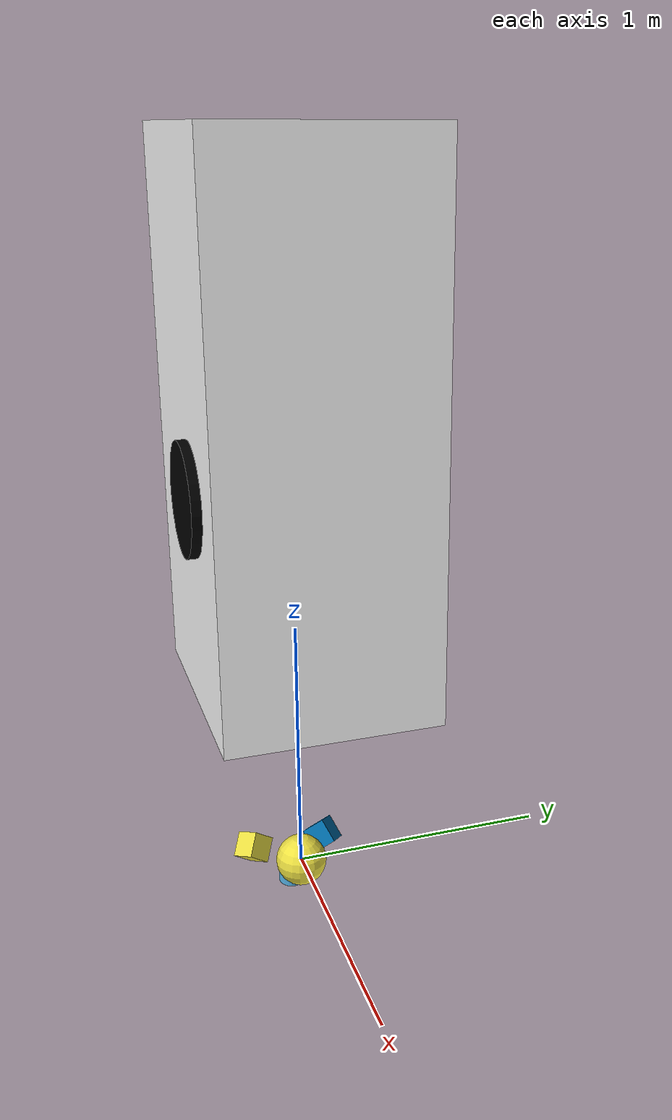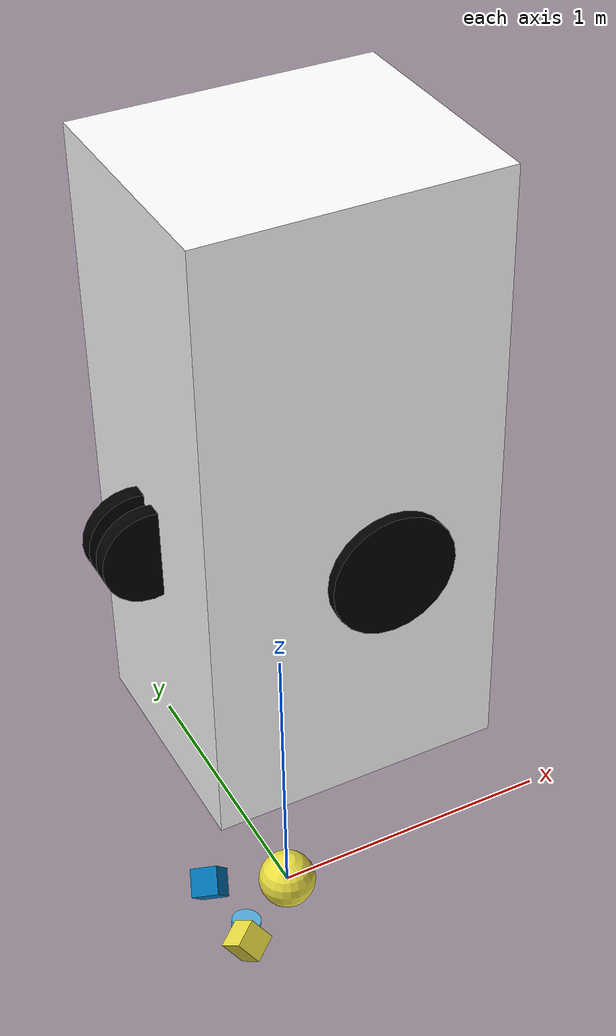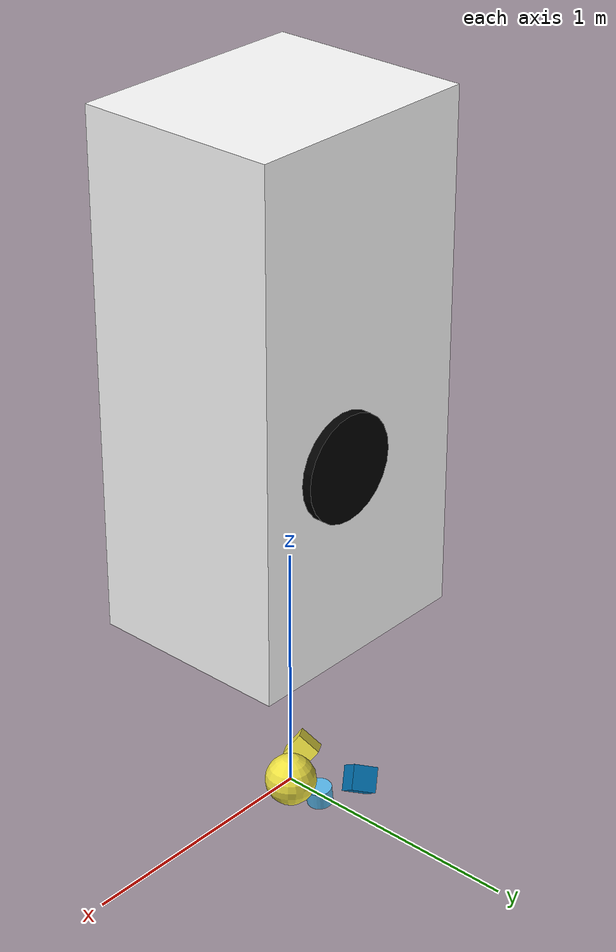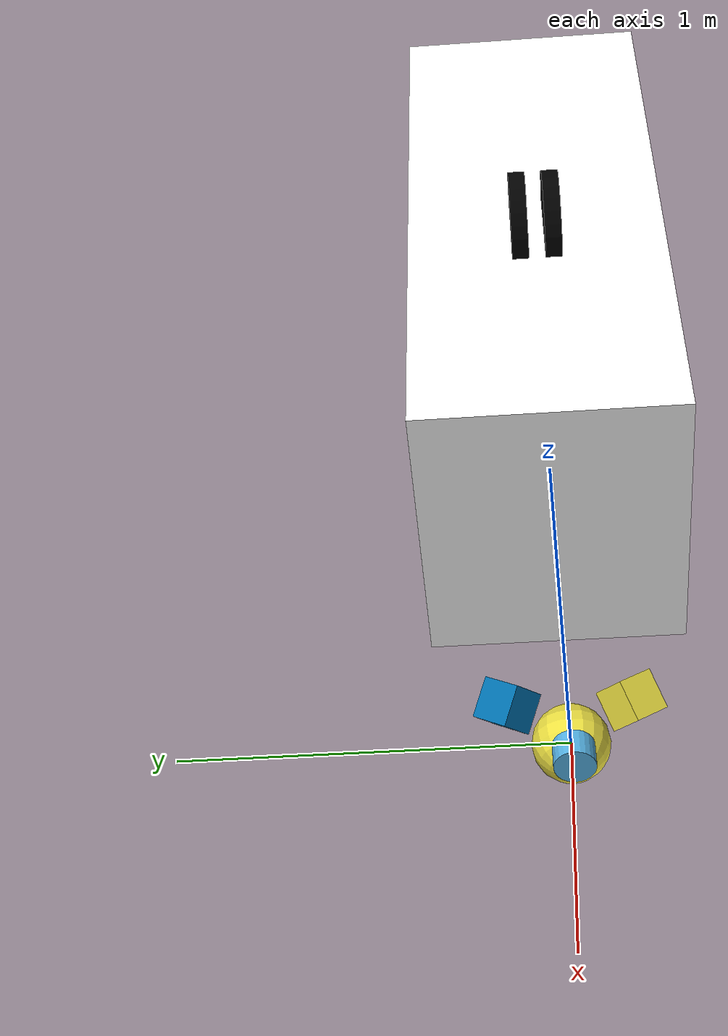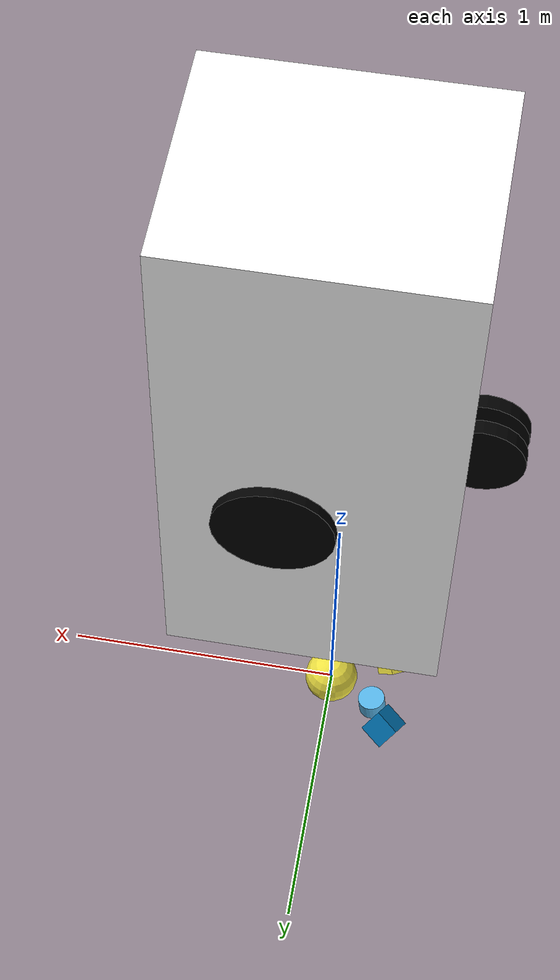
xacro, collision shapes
<?xml version="1.0"?>
<robot xmlns:xacro="http://www.ros.org/wiki/xacro" name="navvis_m6">
   <xacro:include filename="$(find Lab_5)/models/navvis.xacro" />
   <link name="base_link">
   </link>
   <joint name="base_link_base_joint" type="fixed">
	<parent link="base_link" />
	<child link="base" />
	<origin xyz="0.07 0 1.792" rpy="0.0 ${pi} 0.0" />
   </joint>
   <joint name="base_imu_joint" type="fixed">
	<parent link="base_link" />
	<child link="imu" />
	<origin xyz="0.0 0.0 0.0" rpy="3.1405788 0.0034281 3.1382064" />
   </joint>
   <link name="imu">
	<visual>
		<geometry>
			<sphere radius="0.1" />
		</geometry>
	</visual>
	<collision>
		<geometry>
			<sphere radius="0.1" />
		</geometry>
	</collision>
   </link>
</robot>

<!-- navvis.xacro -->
<robot xmlns:xacro="https://www.ros.org/wiki/xacro" name="Navvis" >
	<xacro:include filename="$(find gazebo_plugins)/test/multi_robot_scenario/xacro/laser/hokuyo.xacro" />
	<xacro:include filename="$(find velodyne_description)/urdf/VLP-16.urdf.xacro" />
	<material name="white">
		<color rgba="1 1 1 1"/>
	</material>

	<material name="black">
		<color rgba="0 0 0 1"/>
	</material>

	<xacro:macro name="laser_vert" params="description xyz rpy">
		<link name="laser_vert_${description}">
			<visual>
				<geometry>
					<box size=".062 .062 .087"/>
				</geometry>
				<material name="black"/>
			</visual>
			<collision>
				<geometry>
					<box size=".062 .062 .087"/>
				</geometry>
			</collision>
		</link>
		<joint name="base2laser_vert_${description}" type="fixed">
			<parent link="base" />
			<child link="laser_vert_${description}"/>
			<origin xyz="${xyz}" rpy="${rpy}"/>
		</joint>
	</xacro:macro>
	<xacro:macro name="wheel" params="description xyz radius">
		<link name="wheel_${description}">
			<visual>
				<geometry>
					<cylinder radius="${radius}" length=".05"/>
				</geometry>
				<material name="black"/>
			</visual>
			<collision>
				<geometry>
					<cylinder radius="${radius}" length=".05"/>
				</geometry>
			</collision>
		</link>
		<joint name="base2wheel_${description}" type="continuous">
			<parent link="base" />
			<child link="wheel_${description}"/>
			<origin xyz="${xyz}" rpy="-1.5707 0.0 0.0"/>
			<axis xyz="0 1 0"/>
			<limit effort=".1" velocity="99"/>
		</joint>
	</xacro:macro>
	<xacro:macro name="base">
		<origin xyz=".2 0 .99"/>
		<geometry>
			<box size="0.2 0.3 1.80"/>
		</geometry>
	</xacro:macro>

	<xacro:macro name="laser_horiz">
		<geometry>
			<cylinder radius="0.052" length="0.072"/>
		</geometry>
	</xacro:macro>
	<link name="base">
			<visual>
				<material name="white"/>
				<xacro:base/>
			</visual>
			<collision>
				<geometry>
					<box size="0.94 0.78 1.98"/>
				</geometry>
			</collision>
	</link>
	<VLP-16 parent="base" name="laser_horiz" topic="laser_horiz/packets" hz="10" samples="440" gpu="false">
		<origin xyz="0.2325416305773505 -0.0001380069427607134 1.920122926231907"
rpy="-0.0012068 0.114646 -0.0015308" />
	</VLP-16>
	<xacro:laser name="laser_vert_top_right" parent="base" xyz="0.2978 -0.1450 1.8451" rpy="-1.176 0.6313 -1.9377" meshes="package://gazebo_plugins/test/multi_robot_scenario/meshes/laser" />
	<xacro:laser name="laser_vert_top_left" parent="base" xyz="0.2997 0.1531 1.8443" rpy="1.178 0.6198 1.9560" meshes="package://gazebo_plugins/test/multi_robot_scenario/meshes/laser" />
	<xacro:laser name="laser_vert_bottom" parent="base" xyz="0.3158 -0.0021 .51" rpy="3.1355 -1.3045 0.0025" meshes="package://gazebo_plugins/test/multi_robot_scenario/meshes/laser" />

	<xacro:wheel description="right" xyz="-0.1 -0.4 .2" radius=".2"/>
	<xacro:wheel description="left" xyz="-0.1 0.4 .2" radius=".2"/>
	<xacro:wheel description="front_right" xyz="0.5 -0.05 .15" radius=".15"/>
	<xacro:wheel description="front_left" xyz="0.5 0.05 .15" radius=".15"/>
</robot>

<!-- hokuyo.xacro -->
<robot xmlns:xacro="http://www.ros.org/wiki/xacro">

<!-- Front Laser -->
<xacro:macro name="laser" params="name parent xyz rpy meshes" >

  <joint name="${parent}_${name}_joint" type="fixed">
      <axis xyz="0 0 1" />
      <origin xyz="${xyz}" rpy="${rpy}"/>
      <parent link="${parent}"/>
      <child link="${name}"/>
    </joint>

    <link name="${name}">
      <collision>
        <origin xyz="0 0 0" rpy="0 0 0"/>
        <geometry>
          <box size="0.1 0.1 0.1"/>
        </geometry>
      </collision>
      <visual>
        <origin xyz="0 0 0" rpy="0 0 0"/>
        <geometry>
          <mesh filename="${meshes}/hokuyo.dae"/>
        </geometry>
      </visual>
      <inertial>
        <mass value="1e-5" />
        <origin xyz="0 0 0" rpy="0 0 0"/>
        <inertia ixx="1e-6" ixy="0" ixz="0" iyy="1e-6" iyz="0" izz="1e-6" />
      </inertial>
    </link>

    <gazebo reference="${name}">
        <sensor name="laser" type="ray">
        <pose>0 0 0 0 0 0</pose>
          <ray>
            <scan>
              <horizontal>
                <!-- The URG-04LX-UG01  has  683 steps with 0.35139 Degree resolution -->
                <resolution>1</resolution>
                <max_angle>2.0944</max_angle> <!-- 120 Degree -->
                <min_angle>-2.0944</min_angle> <!-- -120 Degree -->
                <samples>683</samples>
              </horizontal>
            </scan>
            <range>
              <min>0.08</min>
              <max>5</max>
              <resolution>0.01</resolution>
            </range>
          </ray>

          <plugin name="laser" filename="libgazebo_ros_laser.so" >
            <robotNamespace></robotNamespace>
            <topicName>${name}/scan</topicName>
            <frameName>${name}</frameName>
          </plugin>

          <always_on>1</always_on>
          <update_rate>30</update_rate>
          <visualize>true</visualize>
        </sensor>
    </gazebo>
</xacro:macro>

</robot>

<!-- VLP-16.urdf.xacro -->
<robot xmlns:xacro="http://www.ros.org/wiki/xacro" name="VLP-16">
  <xacro:property name="M_PI" value="3.1415926535897931" />
  <xacro:macro name="VLP-16" params="*origin is_sim:=true parent:=base_link name:=velodyne tf_prefix:='' topic:=/velodyne_points organize_cloud:=false hz:=10 lasers:=16 samples:=1875 collision_range:=0.3 min_range:=0.0 max_range:=100.0 noise:=0.008 min_angle:=-${M_PI} max_angle:=${M_PI} gpu:=false">

    <joint name="${name}_base_mount_joint" type="fixed">
      <xacro:insert_block name="origin" />
      <parent link="${parent}"/>
      <child link="${name}_base_link"/>
    </joint>

    <link name="${name}_base_link">
      <inertial>
        <mass value="0.83"/>
        <origin xyz="0 0 0.03585"/>
        <inertia ixx="${(0.83 * (3.0*0.0516*0.0516 + 0.0717*0.0717)) / 12.0}" ixy="0" ixz="0"
          iyy="${(0.83 * (3.0*0.0516*0.0516 + 0.0717*0.0717)) / 12.0}" iyz="0"
          izz="${0.5 * 0.83 * (0.0516*0.0516)}"/>
      </inertial>
      <visual>
        <geometry>
          <mesh filename="package://velodyne_description/meshes/VLP16_base_1.dae" />
        </geometry>
      </visual>
      <visual>
        <geometry>
          <mesh filename="package://velodyne_description/meshes/VLP16_base_2.dae" />
        </geometry>
      </visual>
      <collision>
        <origin rpy="0 0 0" xyz="0 0 0.03585"/>
        <geometry>
          <cylinder radius="0.0516" length="0.0717"/>
        </geometry>
      </collision>
    </link>

    <joint name="${name}_base_scan_joint" type="fixed" >
      <origin xyz="0 0 0.0377" rpy="0 0 0" />
      <parent link="${name}_base_link" />
      <child link="${name}"/>
    </joint>

    <link name="${name}">
      <inertial>
        <mass value="0.01"/>
        <origin xyz="0 0 0"/>
        <inertia ixx="1e-7" ixy="0" ixz="0" iyy="1e-7" iyz="0" izz="1e-7"/>
      </inertial>
      <visual>
        <origin xyz="0 0 -0.0377" />
        <geometry>
          <mesh filename="package://velodyne_description/meshes/VLP16_scan.dae" />
        </geometry>
      </visual>
      <collision>
        <geometry>
          <sphere radius="0"/>
        </geometry>
      </collision>
    </link>

    <!-- Gazebo requires the velodyne_gazebo_plugins package -->
    <xacro:if value="${is_sim}">
        <gazebo reference="${name}">
            <xacro:if value="${gpu}">
                <sensor type="gpu_ray" name="${name}-VLP16">
                <pose>0 0 0 0 0 0</pose>
                <visualize>false</visualize>
                <update_rate>${hz}</update_rate>
                <ray>
                    <scan>
                    <horizontal>
                        <samples>${samples}</samples>
                        <resolution>1</resolution>
                        <min_angle>${min_angle}</min_angle>
                        <max_angle>${max_angle}</max_angle>
                    </horizontal>
                    <vertical>
                        <samples>${lasers}</samples>
                        <resolution>1</resolution>
                        <min_angle>-${15.0*M_PI/180.0}</min_angle>
                        <max_angle> ${15.0*M_PI/180.0}</max_angle>
                    </vertical>
                    </scan>
                    <range>
                    <min>${collision_range}</min>
                    <max>${max_range+1}</max>
                    <resolution>0.001</resolution>
                    </range>
                    <noise>
                    <type>gaussian</type>
                    <mean>0.0</mean>
                    <stddev>0.0</stddev>
                    </noise>
                </ray>
                <plugin name="gazebo_ros_laser_controller" filename="libgazebo_ros_velodyne_laser.so">
                    <ros>
                    <namespace>/${name}</namespace>
                    <remapping>~/out:=${topic}</remapping>
                    </ros>
                    <tf_prefix>${tf_prefix}</tf_prefix>
                    <frame_name>${name}</frame_name>
                    <organize_cloud>${organize_cloud}</organize_cloud>
                    <min_range>${min_range}</min_range>
                    <max_range>${max_range}</max_range>
                    <gaussian_noise>${noise}</gaussian_noise>
                </plugin>
                </sensor>
            </xacro:if>
            <xacro:unless value="${gpu}">
                <sensor type="ray" name="${name}-VLP16">
                <pose>0 0 0 0 0 0</pose>
                <visualize>false</visualize>
                <update_rate>${hz}</update_rate>
                <ray>
                    <scan>
                    <horizontal>
                        <samples>${samples}</samples>
                        <resolution>1</resolution>
                        <min_angle>${min_angle}</min_angle>
                        <max_angle>${max_angle}</max_angle>
                    </horizontal>
                    <vertical>
                        <samples>${lasers}</samples>
                        <resolution>1</resolution>
                        <min_angle>-${15.0*M_PI/180.0}</min_angle>
                        <max_angle> ${15.0*M_PI/180.0}</max_angle>
                    </vertical>
                    </scan>
                    <range>
                    <min>${collision_range}</min>
                    <max>${max_range+1}</max>
                    <resolution>0.001</resolution>
                    </range>
                    <noise>
                    <type>gaussian</type>
                    <mean>0.0</mean>
                    <stddev>0.0</stddev>
                    </noise>
                </ray>
                <plugin name="gazebo_ros_laser_controller" filename="libgazebo_ros_velodyne_laser.so">
                    <ros>
                    <namespace>/${name}</namespace>
                    <remapping>~/out:=${topic}</remapping>
                    </ros>
                    <tf_prefix>${tf_prefix}</tf_prefix>
                    <frame_name>${name}</frame_name>
                    <organize_cloud>${organize_cloud}</organize_cloud>
                    <min_range>${min_range}</min_range>
                    <max_range>${max_range}</max_range>
                    <gaussian_noise>${noise}</gaussian_noise>
                </plugin>
                </sensor>
            </xacro:unless>
        </gazebo>
    </xacro:if>

  </xacro:macro>
</robot>
